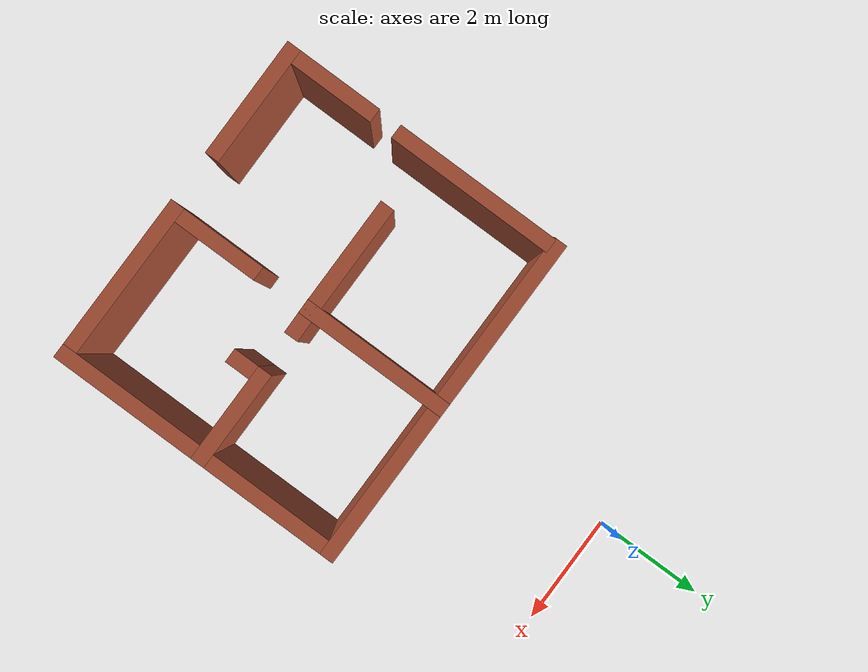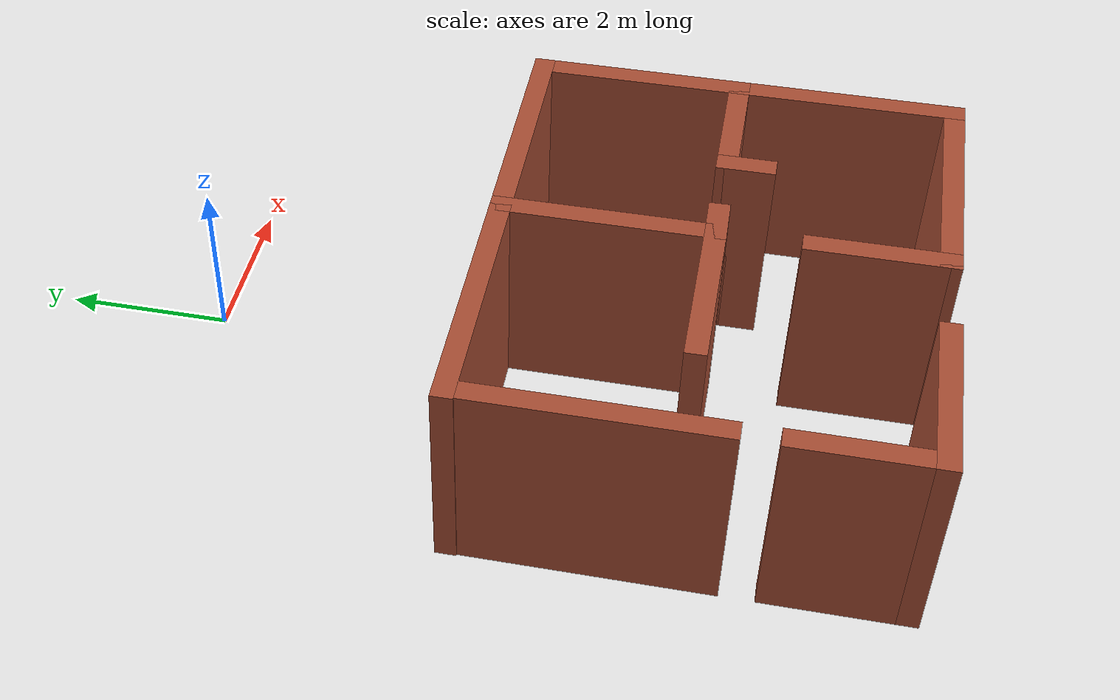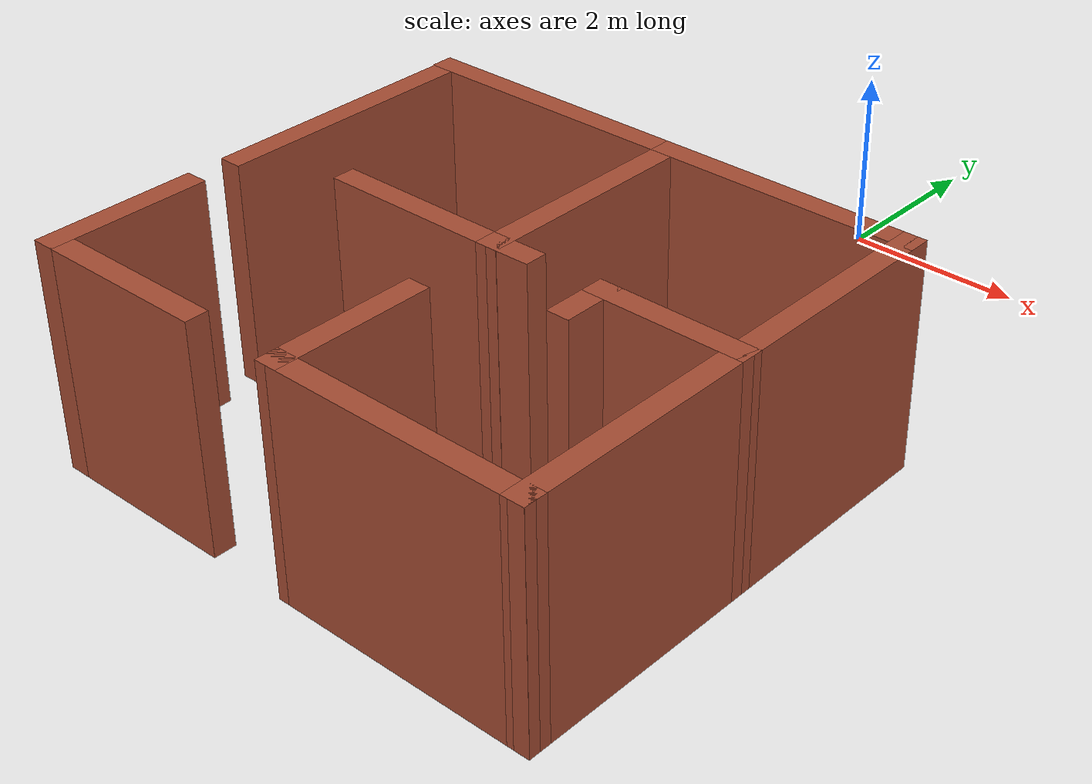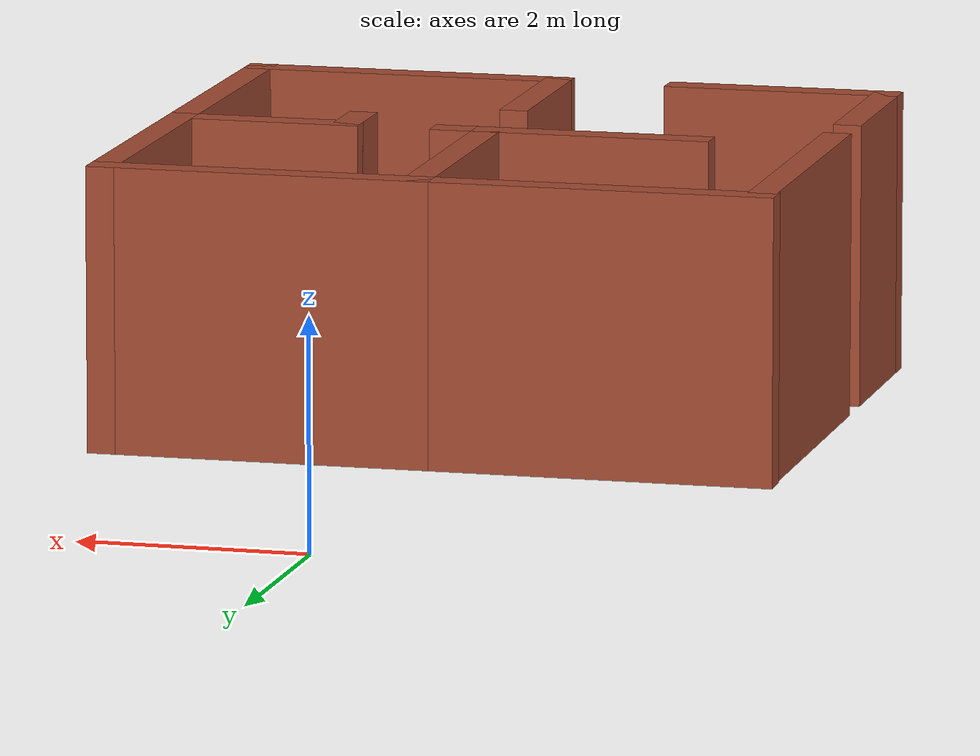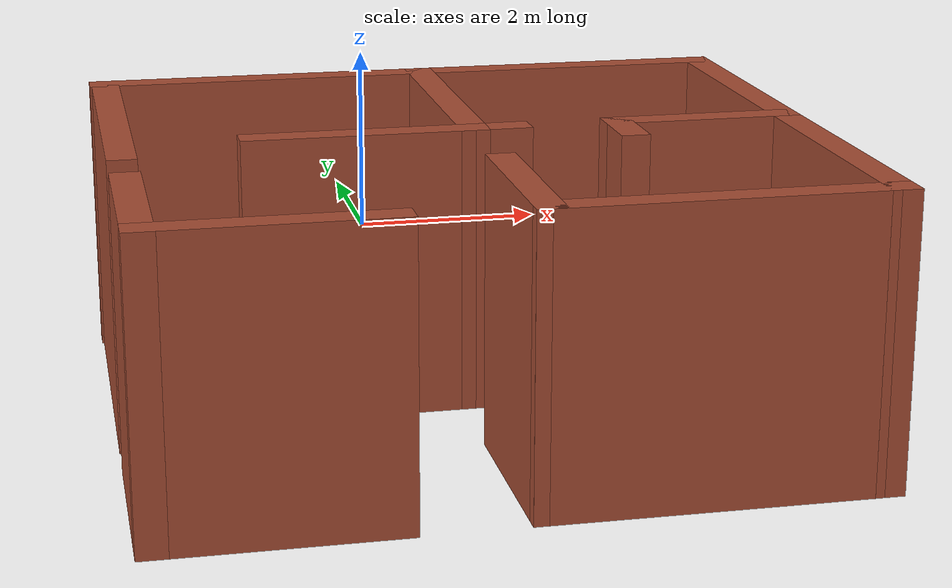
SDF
<?xml version='1.0'?>
<sdf version='1.7'>
  <model name='robocup_2025'>
    <pose>-0.104639 -4.36475 0 0 -0 0</pose>
    <link name='Wall_102'>
      <collision name='Wall_102_Collision'>
        <geometry>
          <box>
            <size>1.75 0.25 2.5</size>
          </box>
        </geometry>
        <pose>0 0 1.25 0 -0 0</pose>
      </collision>
      <visual name='Wall_102_Visual'>
        <pose>0 0 1.25 0 -0 0</pose>
        <geometry>
          <box>
            <size>1.75 0.25 2.5</size>
          </box>
        </geometry>
        <material>
          <script>
            <uri>file://media/materials/scripts/gazebo.material</uri>
            <name>Gazebo/Bricks</name>
          </script>
          <ambient>1 1 1 1</ambient>
        </material>
        <meta>
          <layer>0</layer>
        </meta>
      </visual>
      <pose>2.13486 -1.63885 0 0 -0 3.14159</pose>
    </link>
    <link name='Wall_110'>
      <collision name='Wall_110_Collision'>
        <geometry>
          <box>
            <size>2.7 0.25 2.5</size>
          </box>
        </geometry>
        <pose>0 0 1.25 0 -0 0</pose>
      </collision>
      <visual name='Wall_110_Visual'>
        <pose>0 0 1.25 0 -0 0</pose>
        <geometry>
          <box>
            <size>2.7 0.25 2.5</size>
          </box>
        </geometry>
        <material>
          <script>
            <uri>file://media/materials/scripts/gazebo.material</uri>
            <name>Gazebo/Bricks</name>
          </script>
          <ambient>1 1 1 1</ambient>
        </material>
        <meta>
          <layer>0</layer>
        </meta>
      </visual>
      <pose>0.114749 -0.414049 0 0 -0 -1.57089</pose>
    </link>
    <link name='Wall_113'>
      <collision name='Wall_113_Collision'>
        <geometry>
          <box>
            <size>0.620041 0.25 2.5</size>
          </box>
        </geometry>
        <pose>0 0 1.25 0 -0 0</pose>
      </collision>
      <visual name='Wall_113_Visual'>
        <pose>0 0 1.25 0 -0 0</pose>
        <geometry>
          <box>
            <size>0.620041 0.25 2.5</size>
          </box>
        </geometry>
        <material>
          <script>
            <uri>file://media/materials/scripts/gazebo.material</uri>
            <name>Gazebo/Bricks</name>
          </script>
          <ambient>1 1 1 1</ambient>
        </material>
        <meta>
          <layer>0</layer>
        </meta>
      </visual>
      <pose>0.299637 -1.63637 0 0 -0 0.015543</pose>
    </link>
    <link name='Wall_115'>
      <collision name='Wall_115_Collision'>
        <geometry>
          <box>
            <size>0.7 0.25 2.5</size>
          </box>
        </geometry>
        <pose>0 0 1.25 0 -0 0</pose>
      </collision>
      <visual name='Wall_115_Visual'>
        <pose>0 0 1.25 0 -0 0</pose>
        <geometry>
          <box>
            <size>0.7 0.25 2.5</size>
          </box>
        </geometry>
        <material>
          <script>
            <uri>file://media/materials/scripts/gazebo.material</uri>
            <name>Gazebo/Bricks</name>
          </script>
          <ambient>1 1 1 1</ambient>
        </material>
        <meta>
          <layer>0</layer>
        </meta>
      </visual>
      <pose>1.38486 -1.86385 0 0 -0 -1.5708</pose>
    </link>
    <link name='Wall_117'>
      <collision name='Wall_117_Collision'>
        <geometry>
          <box>
            <size>2.85 0.25 2.5</size>
          </box>
        </geometry>
        <pose>0 0 1.25 0 -0 0</pose>
      </collision>
      <visual name='Wall_117_Visual'>
        <pose>0 0 1.25 0 -0 0</pose>
        <geometry>
          <box>
            <size>2.85 0.25 2.5</size>
          </box>
        </geometry>
        <material>
          <script>
            <uri>file://media/materials/scripts/gazebo.material</uri>
            <name>Gazebo/Bricks</name>
          </script>
          <ambient>1 1 1 1</ambient>
        </material>
        <meta>
          <layer>0</layer>
        </meta>
      </visual>
      <pose>2.88475 -2.93905 0 0 -0 -1.57088</pose>
    </link>
    <link name='Wall_119'>
      <collision name='Wall_119_Collision'>
        <geometry>
          <box>
            <size>3.00524 0.25 2.5</size>
          </box>
        </geometry>
        <pose>0 0 1.25 0 -0 0</pose>
      </collision>
      <visual name='Wall_119_Visual'>
        <pose>0 0 1.25 0 -0 0</pose>
        <geometry>
          <box>
            <size>3.00524 0.25 2.5</size>
          </box>
        </geometry>
        <material>
          <script>
            <uri>file://media/materials/scripts/gazebo.material</uri>
            <name>Gazebo/Bricks</name>
          </script>
          <ambient>1 1 1 1</ambient>
        </material>
        <meta>
          <layer>0</layer>
        </meta>
      </visual>
      <pose>1.50703 -4.2337 0 0 -0 3.13757</pose>
    </link>
    <link name='Wall_121'>
      <collision name='Wall_121_Collision'>
        <geometry>
          <box>
            <size>1.75 0.25 2.5</size>
          </box>
        </geometry>
        <pose>0 0 1.25 0 -0 0</pose>
      </collision>
      <visual name='Wall_121_Visual'>
        <pose>0 0 1.25 0 -0 0</pose>
        <geometry>
          <box>
            <size>1.75 0.25 2.5</size>
          </box>
        </geometry>
        <material>
          <script>
            <uri>file://media/materials/scripts/gazebo.material</uri>
            <name>Gazebo/Bricks</name>
          </script>
          <ambient>1 1 1 1</ambient>
        </material>
        <meta>
          <layer>0</layer>
        </meta>
      </visual>
      <pose>0.129423 -3.47816 0 0 -0 1.5708</pose>
    </link>
    <link name='Wall_127'>
      <collision name='Wall_127_Collision'>
        <geometry>
          <box>
            <size>2.12 0.25 2.5</size>
          </box>
        </geometry>
        <pose>0 0 1.25 0 -0 0</pose>
      </collision>
      <visual name='Wall_127_Visual'>
        <pose>0 0 1.25 0 -0 0</pose>
        <geometry>
          <box>
            <size>2.12 0.25 2.5</size>
          </box>
        </geometry>
        <material>
          <script>
            <uri>file://media/materials/scripts/gazebo.material</uri>
            <name>Gazebo/Bricks</name>
          </script>
          <ambient>1 1 1 1</ambient>
        </material>
        <meta>
          <layer>0</layer>
        </meta>
      </visual>
      <pose>-1.93338 -4.23378 0 0 -0 3.14159</pose>
    </link>
    <link name='Wall_131'>
      <collision name='Wall_131_Collision'>
        <geometry>
          <box>
            <size>1.75 0.25 2.5</size>
          </box>
        </geometry>
        <pose>0 0 1.25 0 -0 0</pose>
      </collision>
      <visual name='Wall_131_Visual'>
        <pose>0 0 1.25 0 -0 0</pose>
        <geometry>
          <box>
            <size>1.75 0.25 2.5</size>
          </box>
        </geometry>
        <material>
          <script>
            <uri>file://media/materials/scripts/gazebo.material</uri>
            <name>Gazebo/Bricks</name>
          </script>
          <ambient>1 1 1 1</ambient>
        </material>
        <meta>
          <layer>0</layer>
        </meta>
      </visual>
      <pose>-2.86838 -3.48378 0 0 -0 1.5708</pose>
    </link>
    <link name='Wall_135'>
      <collision name='Wall_135_Collision'>
        <geometry>
          <box>
            <size>2.95 0.25 2.5</size>
          </box>
        </geometry>
        <pose>0 0 1.25 0 -0 0</pose>
      </collision>
      <visual name='Wall_135_Visual'>
        <pose>0 0 1.25 0 -0 0</pose>
        <geometry>
          <box>
            <size>2.95 0.25 2.5</size>
          </box>
        </geometry>
        <material>
          <script>
            <uri>file://media/materials/scripts/gazebo.material</uri>
            <name>Gazebo/Bricks</name>
          </script>
          <ambient>1 1 1 1</ambient>
        </material>
        <meta>
          <layer>0</layer>
        </meta>
      </visual>
      <pose>-2.86838 -0.733782 0 0 -0 1.5708</pose>
    </link>
    <link name='Wall_137'>
      <collision name='Wall_137_Collision'>
        <geometry>
          <box>
            <size>3.25 0.25 2.5</size>
          </box>
        </geometry>
        <pose>0 0 1.25 0 -0 0</pose>
      </collision>
      <visual name='Wall_137_Visual'>
        <pose>0 0 1.25 0 -0 0</pose>
        <geometry>
          <box>
            <size>3.25 0.25 2.5</size>
          </box>
        </geometry>
        <material>
          <script>
            <uri>file://media/materials/scripts/gazebo.material</uri>
            <name>Gazebo/Bricks</name>
          </script>
          <ambient>1 1 1 1</ambient>
        </material>
        <meta>
          <layer>0</layer>
        </meta>
      </visual>
      <pose>-1.38514 0.81115 0 0 -0 3.14159</pose>
    </link>
    <link name='Wall_139'>
      <collision name='Wall_139_Collision'>
        <geometry>
          <box>
            <size>2.12 0.25 2.5</size>
          </box>
        </geometry>
        <pose>0 0 1.25 0 -0 0</pose>
      </collision>
      <visual name='Wall_139_Visual'>
        <pose>0 0 1.25 0 -0 0</pose>
        <geometry>
          <box>
            <size>2.12 0.25 2.5</size>
          </box>
        </geometry>
        <material>
          <script>
            <uri>file://media/materials/scripts/gazebo.material</uri>
            <name>Gazebo/Bricks</name>
          </script>
          <ambient>1 1 1 1</ambient>
        </material>
        <meta>
          <layer>0</layer>
        </meta>
      </visual>
      <pose>-0.820361 -1.63925 0 0 -0 3.14159</pose>
    </link>
    <link name='Wall_94'>
      <collision name='Wall_94_Collision'>
        <geometry>
          <box>
            <size>3.02 0.25 2.5</size>
          </box>
        </geometry>
        <pose>0 0 1.25 0 -0 0</pose>
      </collision>
      <visual name='Wall_94_Visual'>
        <pose>0 0 1.25 0 -0 0</pose>
        <geometry>
          <box>
            <size>3.02 0.25 2.5</size>
          </box>
        </geometry>
        <material>
          <script>
            <uri>file://media/materials/scripts/gazebo.material</uri>
            <name>Gazebo/Bricks</name>
          </script>
          <ambient>1 1 1 1</ambient>
        </material>
        <meta>
          <layer>0</layer>
        </meta>
      </visual>
      <pose>1.49986 0.81115 0 0 -0 3.14159</pose>
    </link>
    <link name='Wall_96'>
      <collision name='Wall_96_Collision'>
        <geometry>
          <box>
            <size>2.7 0.25 2.5</size>
          </box>
        </geometry>
        <pose>0 0 1.25 0 -0 0</pose>
      </collision>
      <visual name='Wall_96_Visual'>
        <pose>0 0 1.25 0 -0 0</pose>
        <geometry>
          <box>
            <size>2.7 0.25 2.5</size>
          </box>
        </geometry>
        <material>
          <script>
            <uri>file://media/materials/scripts/gazebo.material</uri>
            <name>Gazebo/Bricks</name>
          </script>
          <ambient>1 1 1 1</ambient>
        </material>
        <meta>
          <layer>0</layer>
        </meta>
      </visual>
      <pose>2.88486 -0.41385 0 0 -0 -1.5708</pose>
    </link>
    <static>1</static>
  </model>
</sdf>
